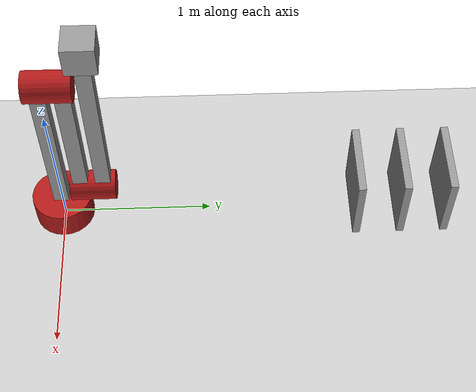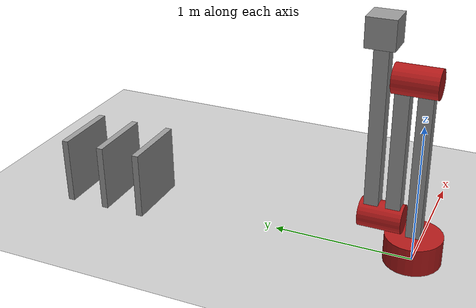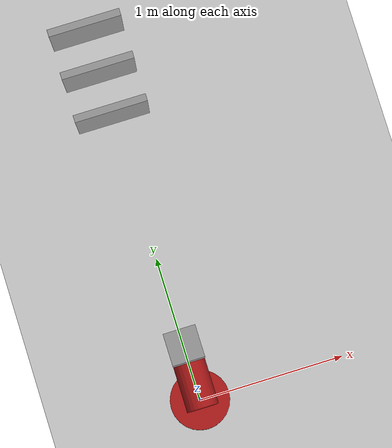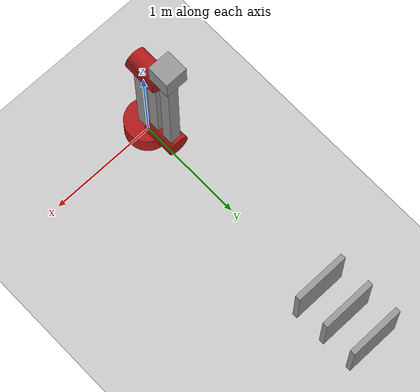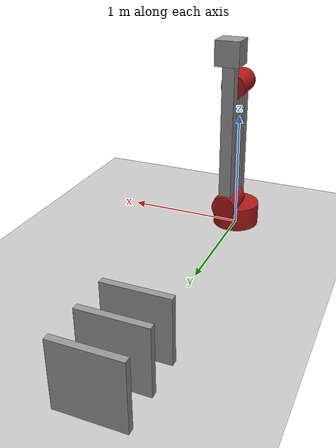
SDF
<sdf version="1.5">
 <world name="default">
  <light name="sun" type="directional">
   <pose>0 0 10 0 -0 0</pose>
   <diffuse>0.8 0.8 0.8 1</diffuse>
   <specular>0.2 0.2 0.2 1</specular>
   <attenuation>
    <range>1000</range>
    <constant>0.9</constant>
    <linear>0.01</linear>
    <quadratic>0.001</quadratic>
   </attenuation>
   <direction>-0.5 0.1 -0.9</direction>
  </light>
  <model name="ground_plane">
   <static>1</static>
   <link name="link">
    <collision name="collision">
     <geometry><plane><normal>0 0 1</normal><size>100 100</size></plane></geometry>
     <surface><friction><ode><mu>100</mu><mu2>50</mu2></ode></friction></surface>
    </collision>
    <visual name="visual">
     <cast_shadows>0</cast_shadows>
     <geometry><plane><normal>0 0 1</normal><size>100 100</size></plane></geometry>
     <material>
      <script><uri>file://media/materials/scripts/gazebo.material</uri><name>Gazebo/Grey</name></script>
     </material>
    </visual>
   </link>
  </model>
  <physics name="default_physics" default="0" type="ode">
   <max_step_size>0.001</max_step_size>
   <real_time_factor>1</real_time_factor>
   <real_time_update_rate>1000</real_time_update_rate>
   <gravity>0 0 -9.8</gravity>
   <magnetic_field>6e-06 2.3e-05 -4.2e-05</magnetic_field>
   <roki>
    <contact_info>
     <compensation>1000</compensation>
     <relaxation>0.001</relaxation>
     <static_friction>5</static_friction>
     <friction>3</friction>
    </contact_info>
    <solver_type>Volume</solver_type>
    <debug_print>false</debug_print>
   </roki>
  </physics>
  <scene><ambient>0.4 0.4 0.4 1</ambient><background>0.7 0.7 0.7 1</background><shadows>1</shadows></scene>
  <audio><device>default</device></audio>
  <spherical_coordinates>
   <surface_model>EARTH_WGS84</surface_model>
   <latitude_deg>0</latitude_deg>
   <longitude_deg>0</longitude_deg>
   <elevation>0</elevation>
   <heading_deg>0</heading_deg>
  </spherical_coordinates>
  <model name="domino050_1">
   <link name="link">
    <pose>0 0 -0.25 0 -0 0</pose>
    <inertial>
     <mass>0.5</mass>
     <inertia>
      <ixx>0.166667</ixx>
      <ixy>0</ixy>
      <ixz>0</ixz>
      <iyy>0.166667</iyy>
      <iyz>0</iyz>
      <izz>0.166667</izz>
     </inertia>
    </inertial>
    <visual name="visual">
     <geometry><box><size>0.5 0.05 0.5</size></box></geometry>
     <material>
      <script><name>Gazebo/Grey</name><uri>file://media/materials/scripts/gazebo.material</uri></script>
      <shader type="pixel"><normal_map>__default__</normal_map></shader>
      <ambient>0.3 0.3 0.3 1</ambient>
      <diffuse>0.7 0.7 0.7 1</diffuse>
      <specular>0.01 0.01 0.01 1</specular>
      <emissive>0 0 0 1</emissive>
     </material>
    </visual>
    <collision name="collision">
     <geometry><box><size>0.5 0.05 0.5</size></box></geometry>
     <surface>
      <friction><ode><mu>1</mu><mu2>1</mu2><fdir1>0 0 0</fdir1><slip1>0</slip1><slip2>0</slip2></ode></friction>
      <bounce><restitution_coefficient>0</restitution_coefficient><threshold>1e+06</threshold></bounce>
      <contact>
       <collide_without_contact>0</collide_without_contact>
       <collide_without_contact_bitmask>1</collide_without_contact_bitmask>
       <collide_bitmask>1</collide_bitmask>
       <ode>
        <soft_cfm>0</soft_cfm>
        <soft_erp>0.2</soft_erp>
        <kp>1e+13</kp>
        <kd>1</kd>
        <max_vel>0.01</max_vel>
        <min_depth>0</min_depth>
       </ode>
       <bullet>
        <split_impulse>1</split_impulse>
        <split_impulse_penetration_threshold>-0.01</split_impulse_penetration_threshold>
        <soft_cfm>0</soft_cfm>
        <soft_erp>0.2</soft_erp>
        <kp>1e+13</kp>
        <kd>1</kd>
       </bullet>
      </contact>
     </surface>
    </collision>
   </link>
   <static>0</static>
   <pose>0 2 0.5 0 -0 0</pose>
  </model>
  <model name="domino050_2">
   <link name="link">
    <pose>0 0 -0.25 0 -0 0</pose>
    <inertial>
     <mass>0.5</mass>
     <inertia>
      <ixx>0.166667</ixx>
      <ixy>0</ixy>
      <ixz>0</ixz>
      <iyy>0.166667</iyy>
      <iyz>0</iyz>
      <izz>0.166667</izz>
     </inertia>
    </inertial>
    <visual name="visual">
     <geometry><box><size>0.5 0.05 0.5</size></box></geometry>
     <material>
      <script><name>Gazebo/Grey</name><uri>file://media/materials/scripts/gazebo.material</uri></script>
      <shader type="pixel"><normal_map>__default__</normal_map></shader>
      <ambient>0.3 0.3 0.3 1</ambient>
      <diffuse>0.7 0.7 0.7 1</diffuse>
      <specular>0.01 0.01 0.01 1</specular>
      <emissive>0 0 0 1</emissive>
     </material>
    </visual>
    <collision name="collision">
     <geometry><box><size>0.5 0.05 0.5</size></box></geometry>
     <surface>
      <friction><ode><mu>1</mu><mu2>1</mu2><fdir1>0 0 0</fdir1><slip1>0</slip1><slip2>0</slip2></ode></friction>
      <bounce><restitution_coefficient>0</restitution_coefficient><threshold>1e+06</threshold></bounce>
      <contact>
       <collide_without_contact>0</collide_without_contact>
       <collide_without_contact_bitmask>1</collide_without_contact_bitmask>
       <collide_bitmask>1</collide_bitmask>
       <ode>
        <soft_cfm>0</soft_cfm>
        <soft_erp>0.2</soft_erp>
        <kp>1e+13</kp>
        <kd>1</kd>
        <max_vel>0.01</max_vel>
        <min_depth>0</min_depth>
       </ode>
       <bullet>
        <split_impulse>1</split_impulse>
        <split_impulse_penetration_threshold>-0.01</split_impulse_penetration_threshold>
        <soft_cfm>0</soft_cfm>
        <soft_erp>0.2</soft_erp>
        <kp>1e+13</kp>
        <kd>1</kd>
       </bullet>
      </contact>
     </surface>
    </collision>
   </link>
   <static>0</static>
   <pose>0 2.3 0.5 0 -0 0</pose>
  </model>
  <model name="domino050_3">
   <link name="link">
    <pose>0 0 -0.25 0 -0 0</pose>
    <inertial>
     <mass>0.5</mass>
     <inertia>
      <ixx>0.166667</ixx>
      <ixy>0</ixy>
      <ixz>0</ixz>
      <iyy>0.166667</iyy>
      <iyz>0</iyz>
      <izz>0.166667</izz>
     </inertia>
    </inertial>
    <visual name="visual">
     <geometry><box><size>0.5 0.05 0.5</size></box></geometry>
     <material>
      <script><name>Gazebo/Grey</name><uri>file://media/materials/scripts/gazebo.material</uri></script>
      <shader type="pixel"><normal_map>__default__</normal_map></shader>
      <ambient>0.3 0.3 0.3 1</ambient>
      <diffuse>0.7 0.7 0.7 1</diffuse>
      <specular>0.01 0.01 0.01 1</specular>
      <emissive>0 0 0 1</emissive>
     </material>
    </visual>
    <collision name="collision">
     <geometry><box><size>0.5 0.05 0.5</size></box></geometry>
     <surface>
      <friction><ode><mu>1</mu><mu2>1</mu2><fdir1>0 0 0</fdir1><slip1>0</slip1><slip2>0</slip2></ode></friction>
      <bounce><restitution_coefficient>0</restitution_coefficient><threshold>1e+06</threshold></bounce>
      <contact>
       <collide_without_contact>0</collide_without_contact>
       <collide_without_contact_bitmask>1</collide_without_contact_bitmask>
       <collide_bitmask>1</collide_bitmask>
       <ode>
        <soft_cfm>0</soft_cfm>
        <soft_erp>0.2</soft_erp>
        <kp>1e+13</kp>
        <kd>1</kd>
        <max_vel>0.01</max_vel>
        <min_depth>0</min_depth>
       </ode>
       <bullet>
        <split_impulse>1</split_impulse>
        <split_impulse_penetration_threshold>-0.01</split_impulse_penetration_threshold>
        <soft_cfm>0</soft_cfm>
        <soft_erp>0.2</soft_erp>
        <kp>1e+13</kp>
        <kd>1</kd>
       </bullet>
      </contact>
     </surface>
    </collision>
   </link>
   <static>0</static>
   <pose>0 2.6 0.5 0 -0 0</pose>
  </model>
  <model name="arm_3_joints">
   <link name="base">
    <pose>0 0 -0.4 0 -0 0</pose>
    <inertial>
     <mass>1</mass>
     <inertia><ixx>1</ixx><ixy>0</ixy><ixz>0</ixz><iyy>1</iyy><iyz>0</iyz><izz>1</izz></inertia>
    </inertial>
    <visual name="visual">
     <geometry><cylinder><radius>0.2</radius><length>0.2</length></cylinder></geometry>
     <material>
      <lighting>1</lighting>
      <script><uri>file://media/materials/scripts/gazebo.material</uri><name>Gazebo/Grey</name></script>
      <shader type="pixel"><normal_map>__default__</normal_map></shader>
      <ambient>0.3 0.3 0.3 1</ambient>
      <diffuse>0.7 0.1 0.1 1</diffuse>
      <specular>0.01 0.01 0.01 1</specular>
      <emissive>0 0 0 1</emissive>
     </material>
    </visual>
    <collision name="collision">
     <geometry><cylinder><radius>0.2</radius><length>0.2</length></cylinder></geometry>
     <surface>
      <friction><ode><mu>1</mu><mu2>1</mu2><fdir1>0 0 0</fdir1><slip1>0</slip1><slip2>0</slip2></ode></friction>
      <bounce><restitution_coefficient>0</restitution_coefficient><threshold>1e+06</threshold></bounce>
      <contact>
       <collide_without_contact>0</collide_without_contact>
       <collide_without_contact_bitmask>1</collide_without_contact_bitmask>
       <collide_bitmask>1</collide_bitmask>
       <ode>
        <soft_cfm>0</soft_cfm>
        <soft_erp>0.2</soft_erp>
        <kp>1e+13</kp>
        <kd>1</kd>
        <max_vel>0.01</max_vel>
        <min_depth>0</min_depth>
       </ode>
       <bullet>
        <split_impulse>1</split_impulse>
        <split_impulse_penetration_threshold>-0.01</split_impulse_penetration_threshold>
        <soft_cfm>0</soft_cfm>
        <soft_erp>0.2</soft_erp>
        <kp>1e+13</kp>
        <kd>1</kd>
       </bullet>
      </contact>
     </surface>
    </collision>
   </link>
   <link name="link_0">
    <pose>0 0 0.15 0 -0 0</pose>
    <inertial>
     <mass>1</mass>
     <inertia><ixx>1</ixx><ixy>0</ixy><ixz>0</ixz><iyy>1</iyy><iyz>0</iyz><izz>1</izz></inertia>
    </inertial>
    <visual name="visual">
     <geometry><box><size>0.1 0.1 1.3</size></box></geometry>
     <material>
      <lighting>1</lighting>
      <script><uri>file://media/materials/scripts/gazebo.material</uri><name>Gazebo/Grey</name></script>
      <shader type="pixel"><normal_map>__default__</normal_map></shader>
      <ambient>0.3 0.3 0.3 1</ambient>
      <diffuse>0.7 0.7 0.7 1</diffuse>
      <specular>0.01 0.01 0.01 1</specular>
      <emissive>0 0 0 1</emissive>
     </material>
    </visual>
    <collision name="collision">
     <geometry><box><size>0.1 0.1 1.3</size></box></geometry>
     <surface>
      <friction><ode><mu>1</mu><mu2>1</mu2><fdir1>0 0 0</fdir1><slip1>0</slip1><slip2>0</slip2></ode></friction>
      <bounce><restitution_coefficient>0</restitution_coefficient><threshold>1e+06</threshold></bounce>
      <contact>
       <collide_without_contact>0</collide_without_contact>
       <collide_without_contact_bitmask>1</collide_without_contact_bitmask>
       <collide_bitmask>1</collide_bitmask>
       <ode>
        <soft_cfm>0</soft_cfm>
        <soft_erp>0.2</soft_erp>
        <kp>1e+13</kp>
        <kd>1</kd>
        <max_vel>0.01</max_vel>
        <min_depth>0</min_depth>
       </ode>
       <bullet>
        <split_impulse>1</split_impulse>
        <split_impulse_penetration_threshold>-0.01</split_impulse_penetration_threshold>
        <soft_cfm>0</soft_cfm>
        <soft_erp>0.2</soft_erp>
        <kp>1e+13</kp>
        <kd>1</kd>
       </bullet>
      </contact>
     </surface>
    </collision>
   </link>
   <link name="link_4">
    <pose>0 0.07 0.8 1.5708 -0 0</pose>
    <inertial>
     <mass>1</mass>
     <inertia><ixx>1</ixx><ixy>0</ixy><ixz>0</ixz><iyy>1</iyy><iyz>0</iyz><izz>1</izz></inertia>
    </inertial>
    <visual name="visual">
     <geometry><cylinder><radius>0.1</radius><length>0.3</length></cylinder></geometry>
     <material>
      <lighting>1</lighting>
      <script><uri>file://media/materials/scripts/gazebo.material</uri><name>Gazebo/Grey</name></script>
      <shader type="pixel"><normal_map>__default__</normal_map></shader>
      <ambient>0.3 0.3 0.3 1</ambient>
      <diffuse>0.7 0.1 0.1 1</diffuse>
      <specular>0.01 0.01 0.01 1</specular>
      <emissive>0 0 0 1</emissive>
     </material>
    </visual>
    <collision name="collision">
     <geometry><cylinder><radius>0.1</radius><length>0.3</length></cylinder></geometry>
     <surface>
      <friction><ode><mu>1</mu><mu2>1</mu2><fdir1>0 0 0</fdir1><slip1>0</slip1><slip2>0</slip2></ode></friction>
      <bounce><restitution_coefficient>0</restitution_coefficient><threshold>1e+06</threshold></bounce>
      <contact>
       <collide_without_contact>0</collide_without_contact>
       <collide_without_contact_bitmask>1</collide_without_contact_bitmask>
       <collide_bitmask>1</collide_bitmask>
       <ode>
        <soft_cfm>0</soft_cfm>
        <soft_erp>0.2</soft_erp>
        <kp>1e+13</kp>
        <kd>1</kd>
        <max_vel>0.01</max_vel>
        <min_depth>0</min_depth>
       </ode>
       <bullet>
        <split_impulse>1</split_impulse>
        <split_impulse_penetration_threshold>-0.01</split_impulse_penetration_threshold>
        <soft_cfm>0</soft_cfm>
        <soft_erp>0.2</soft_erp>
        <kp>1e+13</kp>
        <kd>1</kd>
       </bullet>
      </contact>
     </surface>
    </collision>
   </link>
   <link name="link_2">
    <pose>0 0.15 0.3 0 -0 0</pose>
    <inertial>
     <mass>1</mass>
     <inertia><ixx>1</ixx><ixy>0</ixy><ixz>0</ixz><iyy>1</iyy><iyz>0</iyz><izz>1</izz></inertia>
    </inertial>
    <visual name="visual">
     <geometry><box><size>0.1 0.1 1</size></box></geometry>
     <material>
      <lighting>1</lighting>
      <script><uri>file://media/materials/scripts/gazebo.material</uri><name>Gazebo/Grey</name></script>
      <shader type="pixel"><normal_map>__default__</normal_map></shader>
      <ambient>0.3 0.3 0.3 1</ambient>
      <diffuse>0.7 0.7 0.7 1</diffuse>
      <specular>0.01 0.01 0.01 1</specular>
      <emissive>0 0 0 1</emissive>
     </material>
    </visual>
    <collision name="collision">
     <geometry><box><size>0.1 0.1 1</size></box></geometry>
     <surface>
      <friction><ode><mu>1</mu><mu2>1</mu2><fdir1>0 0 0</fdir1><slip1>0</slip1><slip2>0</slip2></ode></friction>
      <bounce><restitution_coefficient>0</restitution_coefficient><threshold>1e+06</threshold></bounce>
      <contact>
       <collide_without_contact>0</collide_without_contact>
       <collide_without_contact_bitmask>1</collide_without_contact_bitmask>
       <collide_bitmask>1</collide_bitmask>
       <ode>
        <soft_cfm>0</soft_cfm>
        <soft_erp>0.2</soft_erp>
        <kp>1e+13</kp>
        <kd>1</kd>
        <max_vel>0.01</max_vel>
        <min_depth>0</min_depth>
       </ode>
       <bullet>
        <split_impulse>1</split_impulse>
        <split_impulse_penetration_threshold>-0.01</split_impulse_penetration_threshold>
        <soft_cfm>0</soft_cfm>
        <soft_erp>0.2</soft_erp>
        <kp>1e+13</kp>
        <kd>1</kd>
       </bullet>
      </contact>
     </surface>
    </collision>
   </link>
   <link name="link_3">
    <pose>0 0.3 0.4 0 -0 0</pose>
    <inertial>
     <mass>1</mass>
     <inertia><ixx>1</ixx><ixy>0</ixy><ixz>0</ixz><iyy>1</iyy><iyz>0</iyz><izz>1</izz></inertia>
    </inertial>
    <visual name="visual">
     <geometry><box><size>0.1 0.1 1.2</size></box></geometry>
     <material>
      <lighting>1</lighting>
      <script><uri>file://media/materials/scripts/gazebo.material</uri><name>Gazebo/Grey</name></script>
      <shader type="pixel"><normal_map>__default__</normal_map></shader>
      <ambient>0.3 0.3 0.3 1</ambient>
      <diffuse>0.7 0.7 0.7 1</diffuse>
      <specular>0.01 0.01 0.01 1</specular>
      <emissive>0 0 0 1</emissive>
     </material>
    </visual>
    <collision name="collision">
     <geometry><box><size>0.1 0.1 1.2</size></box></geometry>
     <surface>
      <friction><ode><mu>1</mu><mu2>1</mu2><fdir1>0 0 0</fdir1><slip1>0</slip1><slip2>0</slip2></ode></friction>
      <bounce><restitution_coefficient>0</restitution_coefficient><threshold>1e+06</threshold></bounce>
      <contact>
       <collide_without_contact>0</collide_without_contact>
       <collide_without_contact_bitmask>1</collide_without_contact_bitmask>
       <collide_bitmask>1</collide_bitmask>
       <ode>
        <soft_cfm>0</soft_cfm>
        <soft_erp>0.2</soft_erp>
        <kp>1e+13</kp>
        <kd>1</kd>
        <max_vel>0.01</max_vel>
        <min_depth>0</min_depth>
       </ode>
       <bullet>
        <split_impulse>1</split_impulse>
        <split_impulse_penetration_threshold>-0.01</split_impulse_penetration_threshold>
        <soft_cfm>0</soft_cfm>
        <soft_erp>0.2</soft_erp>
        <kp>1e+13</kp>
        <kd>1</kd>
       </bullet>
      </contact>
     </surface>
    </collision>
   </link>
   <link name="link_5">
    <pose>0 0.23 -0.2 1.57079 -0 0</pose>
    <inertial>
     <mass>1</mass>
     <inertia><ixx>1</ixx><ixy>0</ixy><ixz>0</ixz><iyy>1</iyy><iyz>0</iyz><izz>1</izz></inertia>
    </inertial>
    <visual name="visual">
     <geometry><cylinder><radius>0.1</radius><length>0.3</length></cylinder></geometry>
     <material>
      <lighting>1</lighting>
      <script><uri>file://media/materials/scripts/gazebo.material</uri><name>Gazebo/Grey</name></script>
      <shader type="pixel"><normal_map>__default__</normal_map></shader>
      <ambient>0.3 0.3 0.3 1</ambient>
      <diffuse>0.7 0.1 0.1 1</diffuse>
      <specular>0.01 0.01 0.01 1</specular>
      <emissive>0 0 0 1</emissive>
     </material>
    </visual>
    <collision name="collision">
     <geometry><cylinder><radius>0.1</radius><length>0.3</length></cylinder></geometry>
     <surface>
      <friction><ode><mu>1</mu><mu2>1</mu2><fdir1>0 0 0</fdir1><slip1>0</slip1><slip2>0</slip2></ode></friction>
      <bounce><restitution_coefficient>0</restitution_coefficient><threshold>1e+06</threshold></bounce>
      <contact>
       <collide_without_contact>0</collide_without_contact>
       <collide_without_contact_bitmask>1</collide_without_contact_bitmask>
       <collide_bitmask>1</collide_bitmask>
       <ode>
        <soft_cfm>0</soft_cfm>
        <soft_erp>0.2</soft_erp>
        <kp>1e+13</kp>
        <kd>1</kd>
        <max_vel>0.01</max_vel>
        <min_depth>0</min_depth>
       </ode>
       <bullet>
        <split_impulse>1</split_impulse>
        <split_impulse_penetration_threshold>-0.01</split_impulse_penetration_threshold>
        <soft_cfm>0</soft_cfm>
        <soft_erp>0.2</soft_erp>
        <kp>1e+13</kp>
        <kd>1</kd>
       </bullet>
      </contact>
     </surface>
    </collision>
   </link>
   <link name="link_6">
    <pose>0 0.3 1.1 0 -0 0</pose>
    <inertial>
     <mass>1</mass>
     <inertia><ixx>1</ixx><ixy>0</ixy><ixz>0</ixz><iyy>1</iyy><iyz>0</iyz><izz>1</izz></inertia>
    </inertial>
    <visual name="visual">
     <geometry><box><size>0.2 0.2 0.2</size></box></geometry>
     <material>
      <lighting>1</lighting>
      <script><uri>file://media/materials/scripts/gazebo.material</uri><name>Gazebo/Grey</name></script>
      <shader type="pixel"><normal_map>__default__</normal_map></shader>
      <ambient>0.3 0.3 0.3 1</ambient>
      <diffuse>0.7 0.7 0.7 1</diffuse>
      <specular>0.01 0.01 0.01 1</specular>
      <emissive>0 0 0 1</emissive>
     </material>
    </visual>
    <collision name="collision">
     <geometry><box><size>0.2 0.2 0.2</size></box></geometry>
     <surface>
      <friction><ode><mu>1</mu><mu2>1</mu2><fdir1>0 0 0</fdir1><slip1>0</slip1><slip2>0</slip2></ode></friction>
      <bounce><restitution_coefficient>0</restitution_coefficient><threshold>1e+06</threshold></bounce>
      <contact>
       <collide_without_contact>0</collide_without_contact>
       <collide_without_contact_bitmask>1</collide_without_contact_bitmask>
       <collide_bitmask>1</collide_bitmask>
       <ode>
        <soft_cfm>0</soft_cfm>
        <soft_erp>0.2</soft_erp>
        <kp>1e+13</kp>
        <kd>1</kd>
        <max_vel>0.01</max_vel>
        <min_depth>0</min_depth>
       </ode>
       <bullet>
        <split_impulse>1</split_impulse>
        <split_impulse_penetration_threshold>-0.01</split_impulse_penetration_threshold>
        <soft_cfm>0</soft_cfm>
        <soft_erp>0.2</soft_erp>
        <kp>1e+13</kp>
        <kd>1</kd>
       </bullet>
      </contact>
     </surface>
    </collision>
   </link>
   <joint name="fixed_to_world" type="fixed"><parent>world</parent><child>base</child></joint>
   <joint name="fixed0" type="fixed"><parent>link_0</parent><child>link_4</child></joint>
   <joint name="fixed1" type="fixed">
    <parent>link_2</parent>
    <child>link_5</child>
    <physics>
     <ode>
      <cfm>0</cfm>
      <bounce>0</bounce>
      <velocity>0</velocity>
      <fudge_factor>0</fudge_factor>
      <limit><cfm>0</cfm><erp>0.2</erp></limit>
      <suspension><cfm>0</cfm><erp>0.2</erp></suspension>
     </ode>
    </physics>
   </joint>
   <joint name="fixed2" type="fixed">
    <parent>link_3</parent>
    <child>link_6</child>
    <physics>
     <ode>
      <cfm>0</cfm>
      <bounce>0</bounce>
      <velocity>0</velocity>
      <fudge_factor>0</fudge_factor>
      <limit><cfm>0</cfm><erp>0.2</erp></limit>
      <suspension><cfm>0</cfm><erp>0.2</erp></suspension>
     </ode>
    </physics>
   </joint>
   <joint name="revol0" type="revolute">
    <parent>base</parent>
    <child>link_0</child>
    <axis>
     <xyz>0 0 1</xyz>
     <use_parent_model_frame>0</use_parent_model_frame>
     <limit>
      <lower>-1.79769e+308</lower>
      <upper>1.79769e+308</upper>
      <effort>-1</effort>
      <velocity>-1</velocity>
     </limit>
     <dynamics>
      <spring_reference>0</spring_reference>
      <spring_stiffness>0</spring_stiffness>
      <damping>0</damping>
      <friction>0</friction>
     </dynamics>
    </axis>
    <physics>
     <ode>
      <cfm>0</cfm>
      <bounce>0</bounce>
      <velocity>0</velocity>
      <fudge_factor>0</fudge_factor>
      <limit><cfm>0</cfm><erp>0.2</erp></limit>
      <suspension><cfm>0</cfm><erp>0.2</erp></suspension>
     </ode>
    </physics>
   </joint>
   <joint name="revol1" type="revolute">
    <parent>link_0</parent>
    <child>link_2</child>
    <pose>0 0 0.5 0 -0 0</pose>
    <axis>
     <xyz>0 1 0</xyz>
     <use_parent_model_frame>0</use_parent_model_frame>
     <limit>
      <lower>-1.79769e+308</lower>
      <upper>1.79769e+308</upper>
      <effort>-1</effort>
      <velocity>-1</velocity>
     </limit>
     <dynamics>
      <spring_reference>0</spring_reference>
      <spring_stiffness>0</spring_stiffness>
      <damping>0</damping>
      <friction>0</friction>
     </dynamics>
    </axis>
    <physics>
     <ode>
      <cfm>0</cfm>
      <bounce>0</bounce>
      <velocity>0</velocity>
      <fudge_factor>0</fudge_factor>
      <limit><cfm>0</cfm><erp>0.2</erp></limit>
      <suspension><cfm>0</cfm><erp>0.2</erp></suspension>
     </ode>
    </physics>
   </joint>
   <joint name="revol2" type="revolute">
    <parent>link_2</parent>
    <child>link_3</child>
    <pose>0 0 -0.6 0 -0 0</pose>
    <axis>
     <xyz>0 1 0</xyz>
     <use_parent_model_frame>0</use_parent_model_frame>
     <limit>
      <lower>-1.79769e+308</lower>
      <upper>1.79769e+308</upper>
      <effort>-1</effort>
      <velocity>-1</velocity>
     </limit>
     <dynamics>
      <spring_reference>0</spring_reference>
      <spring_stiffness>0</spring_stiffness>
      <damping>0</damping>
      <friction>0</friction>
     </dynamics>
    </axis>
    <physics>
     <ode>
      <cfm>0</cfm>
      <bounce>0</bounce>
      <velocity>0</velocity>
      <fudge_factor>0</fudge_factor>
      <limit><cfm>0</cfm><erp>0.2</erp></limit>
      <suspension><cfm>0</cfm><erp>0.2</erp></suspension>
     </ode>
    </physics>
   </joint>
   <static>0</static>
   <plugin name="pid_position_player" filename="libpid_position_player_plugin.so">
    <capture_file>/home/test/gazebo_source/worlds/test29_arm_3_joints.csv</capture_file>
   </plugin>
   <pose>0 0 0.5 0 -0 0</pose>
  </model>
 </world>
</sdf>
